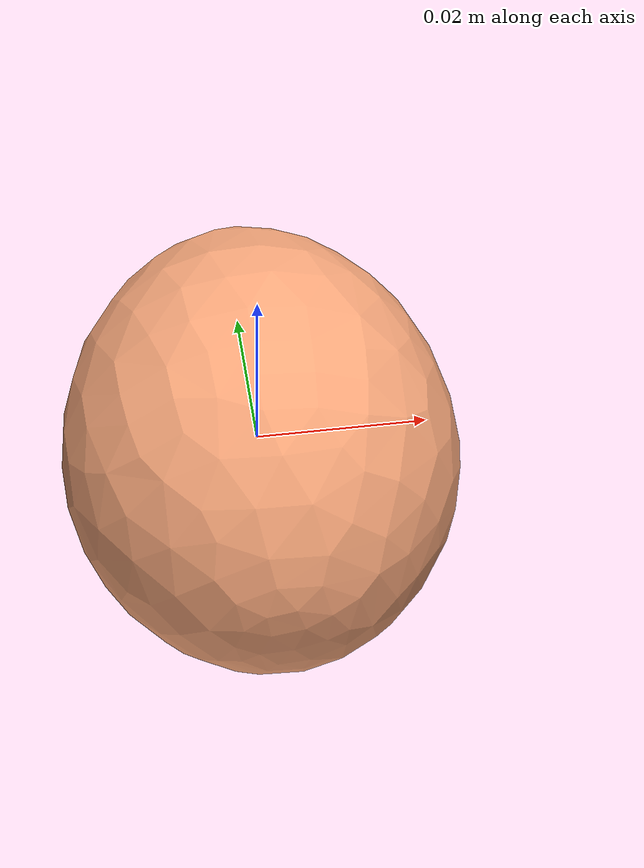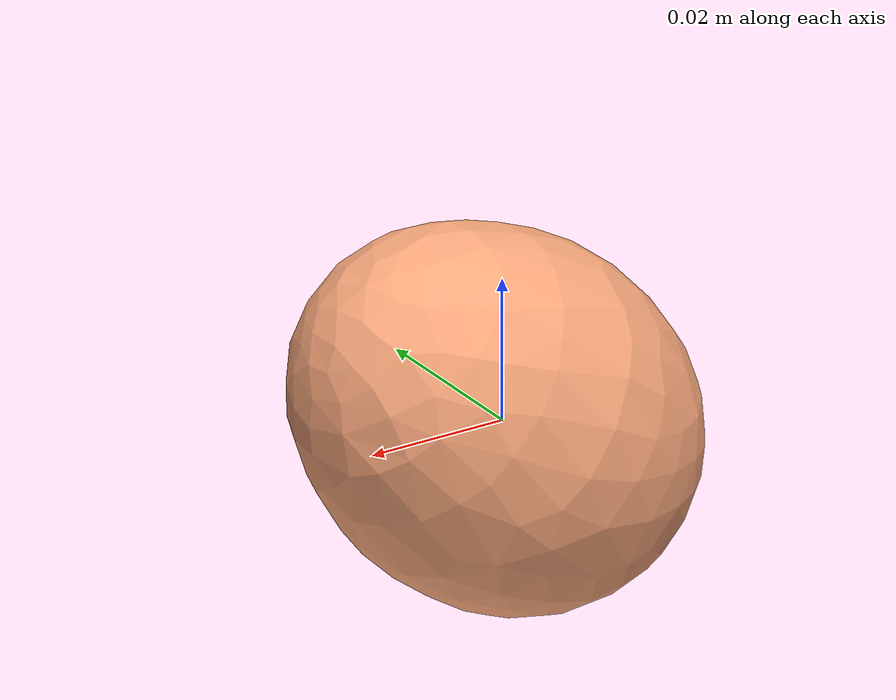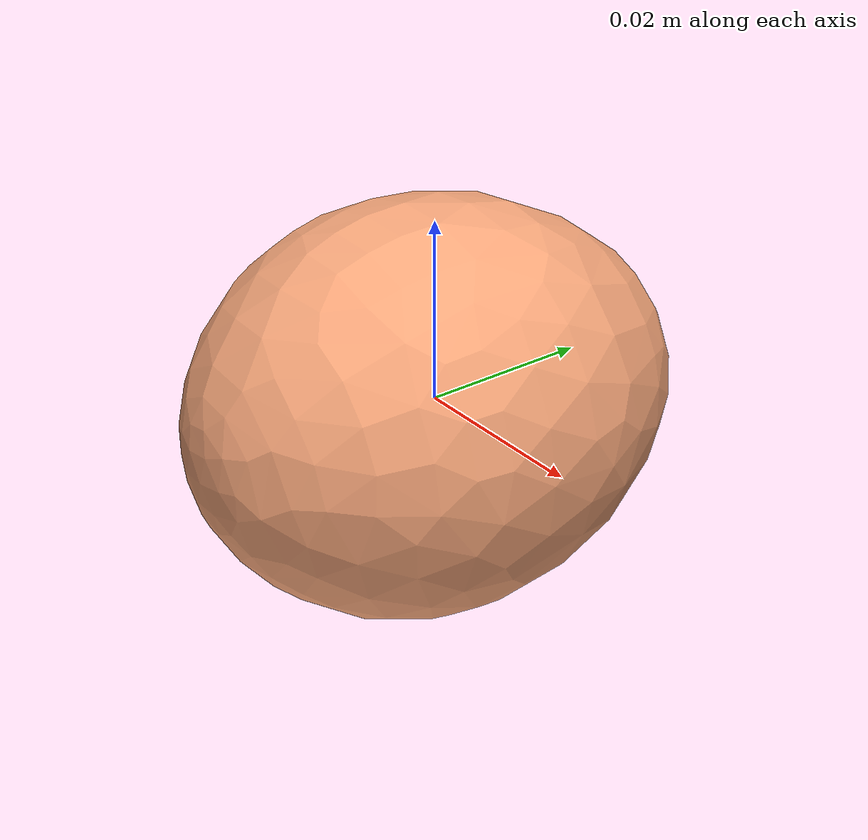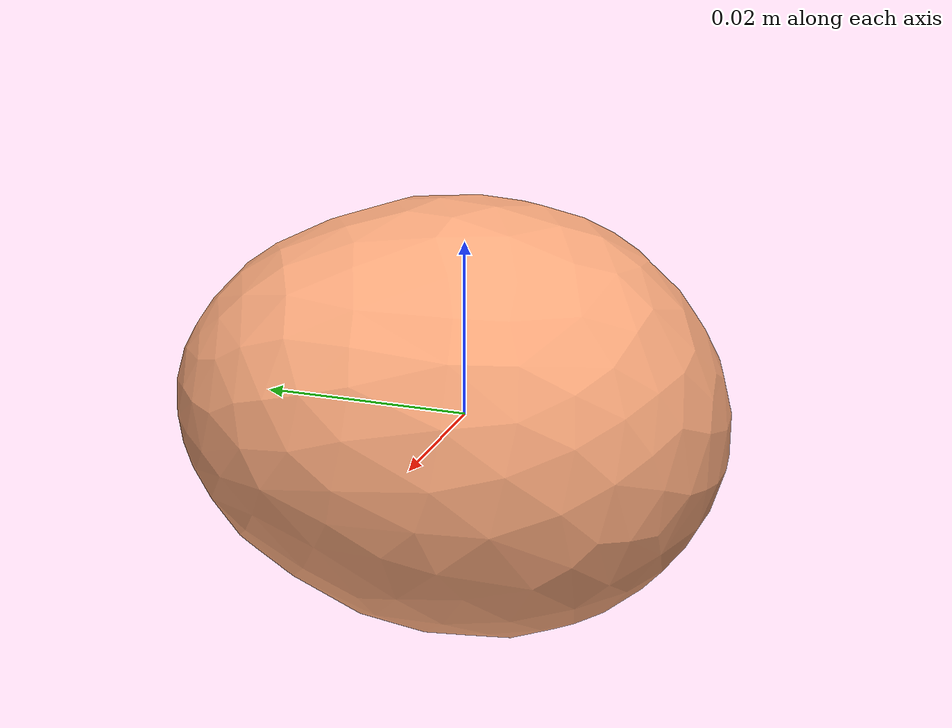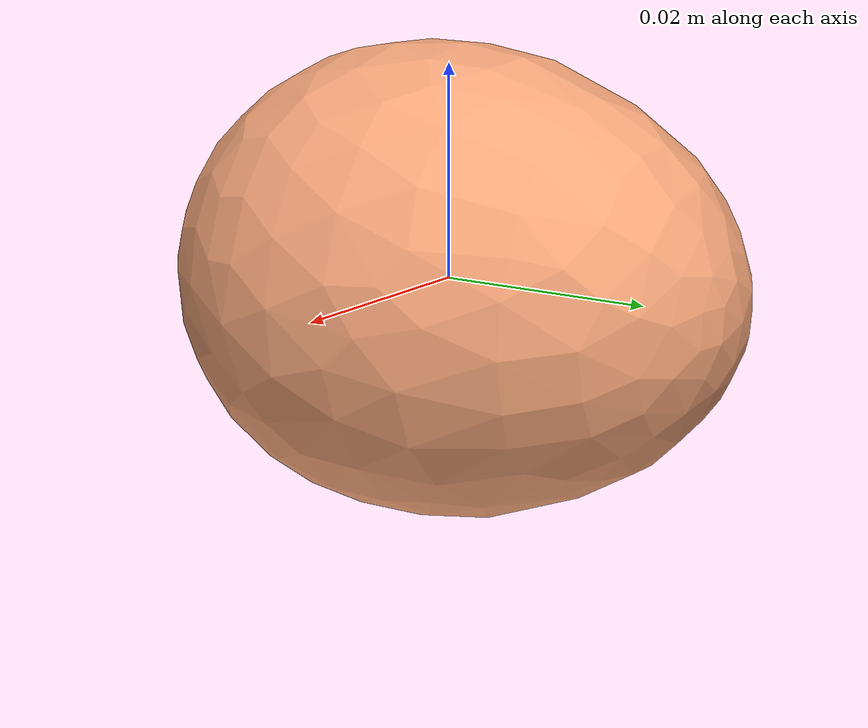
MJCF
<mujoco model="Egg_25">
  <compiler autolimits="true" boundmass="0.01" angle="radian"/>
  <default>
    <default class="/">
      <default class="__VISUAL_MJT__">
        <geom contype="0" conaffinity="0" group="0"/>
      </default>
      <default class="__STRUCTURAL_MJT__">
        <geom contype="8" conaffinity="15" group="4" friction="0.90000000000000002 0.90000000000000002 0.001" solref="0.025000000000000001 1" solimp="0.998 0.998 0.001"/>
      </default>
      <default class="__DYNAMIC_MJT__">
        <geom contype="1" conaffinity="15" group="4" friction="0.90000000000000002 0.90000000000000002 0.001" solref="0.025000000000000001 1" solimp="0.998 0.998 0.001"/>
      </default>
    </default>
  </default>
  <asset>
    <material name="material_Egg1_Mat" class="/" specular="0.5" shininess="0.5" rgba="0.96078439999999998 0.64705880000000005 0.47450979999999998 1"/>
    <mesh name="Egg_25_egg_25" class="/" file="Egg_25_egg_25/Egg_25_egg_25.obj" scale="1 1 1"/>
  </asset>
  <worldbody>
    <body name="Egg_25">
      <joint name="Egg_25_free" class="/" type="free" pos="0 0 0" axis="0 0 1" stiffness="0" range="0 0" armature="0" damping="0.10000000000000001" frictionloss="0"/>
      <body name="Egg_25_egg_25" pos="-0 0 -8.0000000000000007e-05" quat="1 0 0 0">
        <geom name="Egg_25_egg_25" class="__VISUAL_MJT__" type="mesh" material="material_Egg1_Mat" shellinertia="true" mesh="Egg_25_egg_25"/>
        <geom name="Egg_25_PrimitiveCollider_0" class="__DYNAMIC_MJT__" type="capsule" size="0.020034594461321831 0.0075797475874423981" rgba="0 1 0 1" pos="-0 0 0" quat="0.70710678118654757 0.70710678118654746 0 0"/>
      </body>
    </body>
  </worldbody>
</mujoco>
